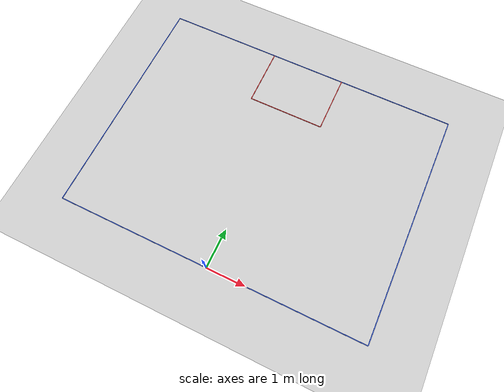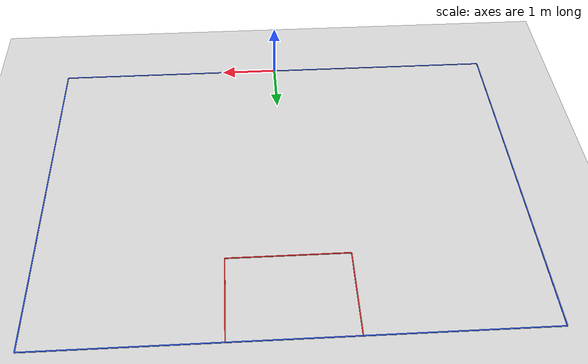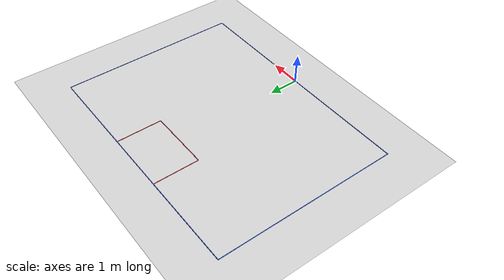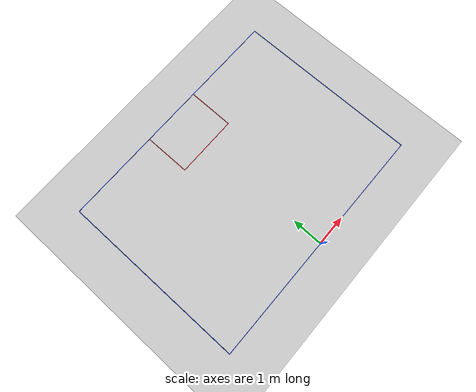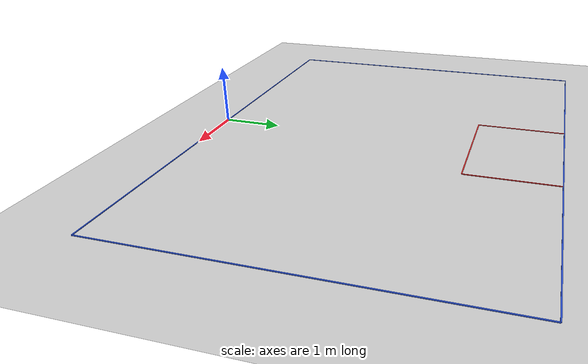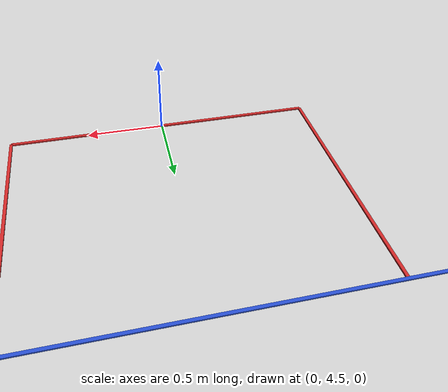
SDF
<?xml version="1.0" encoding="UTF-8"?>
<sdf version="1.9">
  <world name="lines">
    <physics type="ode">
      <max_step_size>0.004</max_step_size>
      <real_time_factor>1.0</real_time_factor>
      <real_time_update_rate>250</real_time_update_rate>
    </physics>

    <!-- Plugins -->
    <plugin name="gz::sim::systems::Physics" filename="gz-sim-physics-system"/>
    <plugin name="gz::sim::systems::UserCommands" filename="gz-sim-user-commands-system"/>
    <plugin name="gz::sim::systems::SceneBroadcaster" filename="gz-sim-scene-broadcaster-system"/>
    <plugin name="gz::sim::systems::Contact" filename="gz-sim-contact-system"/>
    <plugin name="gz::sim::systems::Imu" filename="gz-sim-imu-system"/>
    <plugin name="gz::sim::systems::AirPressure" filename="gz-sim-air-pressure-system"/>
    <plugin name="gz::sim::systems::ApplyLinkWrench" filename="gz-sim-apply-link-wrench-system"/>
    <plugin name="gz::sim::systems::NavSat" filename="gz-sim-navsat-system"/>
    <plugin name="gz::sim::systems::Sensors" filename="gz-sim-sensors-system">
      <render_engine>ogre2</render_engine>
    </plugin>

    <!-- GUI Configuration -->
    <gui fullscreen="false">
      <plugin filename="MinimalScene" name="3D View">
        <gz-gui>
          <title>3D View</title>
          <property type="bool" key="showTitleBar">false</property>
          <property type="string" key="state">docked</property>
        </gz-gui>
        <engine>ogre2</engine>
        <scene>scene</scene>
        <ambient_light>0.4 0.4 0.4</ambient_light>
        <background_color>0.8 0.8 0.8</background_color>
        <camera_pose>-6 0 6 0 0.5 0</camera_pose>
        <camera_clip>
          <near>0.25</near>
          <far>25000</far>
        </camera_clip>
      </plugin>

      <plugin filename="EntityContextMenuPlugin" name="Entity context menu"/>
      <plugin filename="GzSceneManager" name="Scene Manager"/>
      <plugin filename="InteractiveViewControl" name="Interactive view control"/>
      <plugin filename="CameraTracking" name="Camera Tracking"/>
      <plugin filename="MarkerManager" name="Marker manager"/>
      <plugin filename="SelectEntities" name="Select Entities"/>
      <plugin filename="VisualizationCapabilities" name="Visualization Capabilities"/>
      <plugin filename="Spawn" name="Spawn Entities"/>
      <plugin name="World control" filename="WorldControl"/>
      <plugin name="World stats" filename="WorldStats"/>
      <plugin name="Entity tree" filename="EntityTree"/>
    </gui>

    <!-- Gravity and Magnetic Field -->
    <gravity>0 0 -9.81</gravity>
    <magnetic_field>6e-06 2.3e-05 -4.2e-05</magnetic_field>
    <atmosphere type="adiabatic"/>

    <!-- Scene Configuration -->
    <scene>
      <grid>false</grid>
      <ambient>0.4 0.4 0.4 1</ambient>
      <background>0.7 0.7 0.7 1</background>
      <shadows>true</shadows>
    </scene>

    <!-- Lighting -->
    <light name="ambient_light" type="point">
      <cast_shadows>false</cast_shadows>
      <pose>0 0 10 0 0 0</pose>
      <diffuse>0.8 0.8 0.8 1</diffuse>
      <specular>0.2 0.2 0.2 1</specular>
      <attenuation>
        <range>20</range>
        <constant>0.5</constant>
        <linear>0.01</linear>
        <quadratic>0.001</quadratic>
      </attenuation>
    </light>

    <!-- Ground Plane -->
    <model name="ground_plane">
      <static>true</static>
      <link name="link">
        <collision name="collision">
          <geometry>
            <plane>
              <normal>0 0 1</normal>
              <size>100 100</size>
            </plane>
          </geometry>
        </collision>
        <visual name="visual">
          <geometry>
            <plane>
              <normal>0 0 1</normal>
              <size>100 100</size>
            </plane>
          </geometry>
          <material>
            <ambient>0.8 0.8 0.8 1</ambient>
            <diffuse>0.8 0.8 0.8 1</diffuse>
          </material>
        </visual>
      </link>
    </model>

    <!-- Blue Tape -->
    <model name="blue_tape_1">
      <static>true</static>
      <link name="link">
        <collision name="collision">
          <geometry>
            <box>
              <size>8 0.019 0.01</size>
            </box>
          </geometry>
        </collision>
        <visual name="visual">
          <geometry>
            <box>
              <size>8 0.019 0.01</size>
            </box>
          </geometry>
          <material>
            <script>
              <uri>file://media/materials/scripts/gazebo.material</uri>
              <name>Gazebo/Blue</name>
            </script>
          </material>
        </visual>
      </link>
      <pose>0 0 0.005 0 0 0</pose>
    </model>

    <model name="blue_tape_2">
      <static>true</static>
      <link name="link">
        <collision name="collision">
          <geometry>
            <box>
              <size>8 0.019 0.01</size>
            </box>
          </geometry>
        </collision>
        <visual name="visual">
          <geometry>
            <box>
              <size>8 0.019 0.01</size>
            </box>
          </geometry>
          <material>
            <script>
              <uri>file://media/materials/scripts/gazebo.material</uri>
              <name>Gazebo/Blue</name>
            </script>
          </material>
        </visual>
      </link>
      <pose>0 6 0.005 0 0 0</pose>
    </model>

    <model name="blue_tape_3">
      <static>true</static>
      <link name="link">
        <collision name="collision">
          <geometry>
            <box>
              <size>6 0.019 0.01</size>
            </box>
          </geometry>
        </collision>
        <visual name="visual">
          <geometry>
            <box>
              <size>6 0.019 0.01</size>
            </box>
          </geometry>
          <material>
            <script>
              <uri>file://media/materials/scripts/gazebo.material</uri>
              <name>Gazebo/Blue</name>
            </script>
          </material>
        </visual>
      </link>
      <pose>4 3 0.005 0 0 1.5708</pose>
    </model>

    <model name="blue_tape_4">
      <static>true</static>
      <link name="link">
        <collision name="collision">
          <geometry>
            <box>
              <size>6 0.019 0.01</size>
            </box>
          </geometry>
        </collision>
        <visual name="visual">
          <geometry>
            <box>
              <size>6 0.019 0.01</size>
            </box>
          </geometry>
                    <material>
            <script>
              <uri>file://media/materials/scripts/gazebo.material</uri>
              <name>Gazebo/Blue</name>
            </script>
          </material>
        </visual>
      </link>
      <pose>-4 3 0.005 0 0 1.5708</pose>
    </model>

        <!-- Red Tape -->
    <model name="red_tape_1">
      <static>true</static>
      <link name="link">
        <collision name="collision">
          <geometry>
            <box>
              <size>1.5 0.019 0.01</size>
            </box>
          </geometry>
          <surface>
            <friction>
              <ode>
                <mu>1.0</mu>
                <mu2>1.0</mu2>
              </ode>
            </friction>
          </surface>
        </collision>
        <visual name="visual">
          <geometry>
            <box>
              <size>1.5 0.019 0.01</size>
            </box>
          </geometry>
          <material>
            <script>
              <uri>file://media/materials/scripts/gazebo.material</uri>
              <name>Gazebo/Red</name>
            </script>
          </material>
        </visual>
      </link>
      <pose>-1 5.25 0.005 0 0 1.5708</pose>
    </model>

    <model name="red_tape_2">
      <static>true</static>
      <link name="link">
        <collision name="collision">
          <geometry>
            <box>
              <size>1.5 0.019 0.01</size>
            </box>
          </geometry>
          <surface>
            <friction>
              <ode>
                <mu>1.0</mu>
                <mu2>1.0</mu2>
              </ode>
            </friction>
          </surface>
        </collision>
        <visual name="visual">
          <geometry>
            <box>
              <size>1.5 0.019 0.01</size>
            </box>
          </geometry>
        <material>
            <script>
              <uri>file://media/materials/scripts/gazebo.material</uri>
              <name>Gazebo/Red</name>
            </script>
          </material>
        </visual>
      </link>
      <pose>1 5.25 0.005 0 0 1.5708</pose>
    </model>

    <model name="red_tape_3">
      <static>true</static>
      <link name="link">
        <collision name="collision">
          <geometry>
            <box>
              <size>2 0.019 0.01</size>
            </box>
          </geometry>
          <surface>
            <friction>
              <ode>
                <mu>1.0</mu>
                <mu2>1.0</mu2>
              </ode>
            </friction>
          </surface>
        </collision>
        <visual name="visual">
          <geometry>
            <box>
              <size>2 0.019 0.01</size>
            </box>
          </geometry>
            <material>
            <script>
              <uri>file://media/materials/scripts/gazebo.material</uri>
              <name>Gazebo/Red</name>
            </script>
          </material>
        </visual>
      </link>
      <pose>0 4.5 0.005 0 0 0</pose>
    </model>
  </world>
</sdf>
